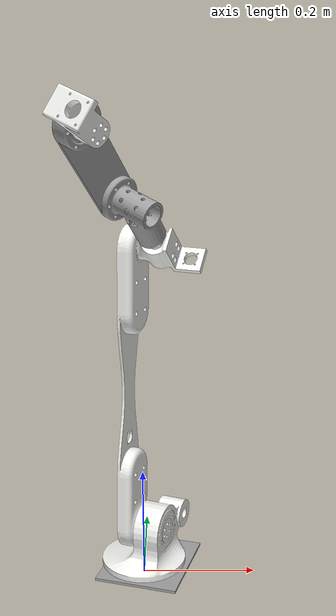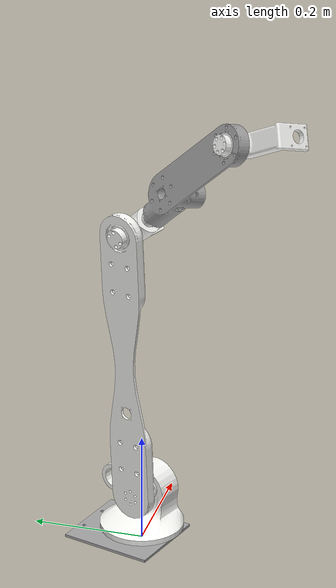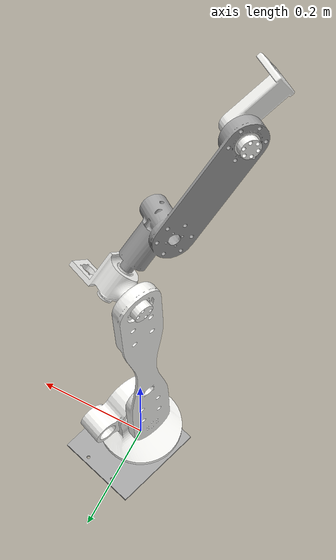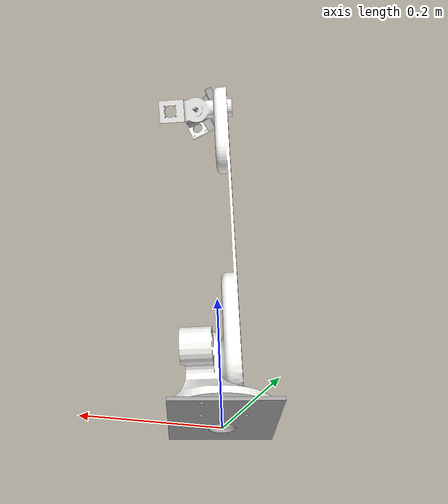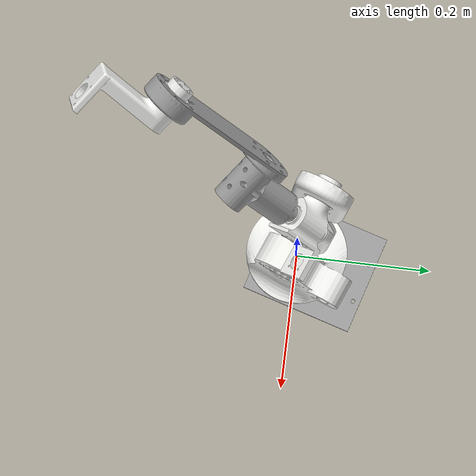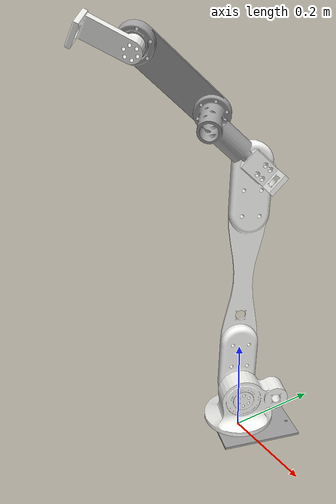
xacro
<?xml version="1.0"?>
<robot xmlns:xacro="http://www.ros.org/wiki/xacro" name="manipulator">
    <xacro:arg name="initial_positions_file" default="initial_positions.yaml" />

    <!-- Import manipulator urdf file -->
    <xacro:include filename="$(find kai)/urdf/manipulator.urdf" />

    <!-- Import control_xacro -->
    <xacro:include filename="manipulator.ros2_control.xacro" />

    <xacro:manipulator_ros2_control name="FakeSystem" initial_positions_file="$(arg initial_positions_file)"/>

</robot>

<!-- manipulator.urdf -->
<robot
  name="manipulator">
  <link
    name="base_link">
    <inertial>
      <origin
        xyz="0.00908164115042133 0.00249999999999991 -0.0305049626836885"
        rpy="0 0 0" />
      <mass
        value="0.11980315324475" />
      <inertia
        ixx="0.000288625897602559"
        ixy="-1.09695631019673E-20"
        ixz="1.5465282435664E-05"
        iyy="0.000529409365034584"
        iyz="-5.8120920424534E-20"
        izz="0.000241282647237211" />
    </inertial>
    <visual>
      <origin
        xyz="0 0 0"
        rpy="0 0 0" />
      <geometry>
        <mesh
          filename="package://kai/meshes/base_link.dae" />
      </geometry>
      <material
        name="">
        <color
          rgba="0.627450980392157 0.627450980392157 0.627450980392157 1" />
      </material>
    </visual>
    <collision>
      <origin
        xyz="0 0 0"
        rpy="0 0 0" />
      <geometry>
        <mesh
          filename="package://kai/meshes/base_link.dae" />
      </geometry>
    </collision>
  </link>
  <link
    name="BaseLink">
    <inertial>
      <origin
        xyz="0.0130098149098752 0.00637352183697149 0.0351023055155284"
        rpy="0 0 0" />
      <mass
        value="0.635450901016514" />
      <inertia
        ixx="0.00146658281605414"
        ixy="-8.00533562972478E-05"
        ixz="-0.000156151329007892"
        iyy="0.00107522273325424"
        iyz="-0.000157052488147922"
        izz="0.00140462825604696" />
    </inertial>
    <visual>
      <origin
        xyz="0 0 0"
        rpy="0 0 0" />
      <geometry>
        <mesh
          filename="package://kai/meshes/BaseLink.STL" />
      </geometry>
      <material
        name="">
        <color
          rgba="0.964705882352941 0.964705882352941 0.952941176470588 1" />
      </material>
    </visual>
    <collision>
      <origin
        xyz="0 0 0"
        rpy="0 0 0" />
      <geometry>
        <mesh
          filename="package://kai/meshes/BaseLink.STL" />
      </geometry>
    </collision>
  </link>
  <joint
    name="Base"
    type="revolute">
    <origin
      xyz="0 0 0.024"
      rpy="0 0 -0.38581" />
    <parent
      link="base_link" />
    <child
      link="BaseLink" />
    <axis
      xyz="0 0 -1" />
    <limit
      lower="-3.14"
      upper="+3.14"
      effort="0"
      velocity="0" />
  </joint>
  <link
    name="Link1">
    <inertial>
      <origin
        xyz="-0.0171899024918185 3.96098050019222E-09 0.211814397998685"
        rpy="0 0 0" />
      <mass
        value="0.75439962581054" />
      <inertia
        ixx="0.00666589929249409"
        ixy="-5.52900390402011E-13"
        ixz="0.000118152905304154"
        iyy="0.00645035702489968"
        iyz="-1.45236654683188E-10"
        izz="0.000447411993441979" />
    </inertial>
    <visual>
      <origin
        xyz="0 0 0"
        rpy="0 0 0" />
      <geometry>
        <mesh
          filename="package://kai/meshes/Link1.STL" />
      </geometry>
      <material
        name="">
        <color
          rgba="0.964705882352941 0.964705882352941 0.952941176470588 1" />
      </material>
    </visual>
    <collision>
      <origin
        xyz="0 0 0"
        rpy="0 0 0" />
      <geometry>
        <mesh
          filename="package://kai/meshes/Link1.STL" />
      </geometry>
    </collision>
  </link>
  <joint
    name="Link_1_joint"
    type="revolute">
    <origin
      xyz="0 0 0.07"
      rpy="-0.049937 0 0" />
    <parent
      link="BaseLink" />
    <child
      link="Link1" />
    <axis
      xyz="-1 0 0" />
    <limit
      lower="-1.65"
      upper="+0.40"
      effort="0"
      velocity="0" />
  </joint>
  <link
    name="LInk2">
    <inertial>
      <origin
        xyz="-1.15541102019279E-07 0.0622210280253098 0.000780641167662521"
        rpy="0 0 0" />
      <mass
        value="0.132683268511766" />
      <inertia
        ixx="0.000149499984756005"
        ixy="9.02670425663714E-10"
        ixz="1.59136095041767E-10"
        iyy="4.34056705353541E-05"
        iyz="1.00196036779716E-05"
        izz="0.000141229747624599" />
    </inertial>
    <visual>
      <origin
        xyz="0 0 0"
        rpy="0 0 0" />
      <geometry>
        <mesh
          filename="package://kai/meshes/LInk2.STL" />
      </geometry>
      <material
        name="">
        <color
          rgba="0.964705882352941 0.964705882352941 0.952941176470588 1" />
      </material>
    </visual>
    <collision>
      <origin
        xyz="0 0 0"
        rpy="0 0 0" />
      <geometry>
        <mesh
          filename="package://kai/meshes/LInk2.STL" />
      </geometry>
    </collision>
  </link>
  <joint
    name="Link_2_joint"
    type="revolute">
    <origin
      xyz="-0.041876 0 0.5"
      rpy="0 0.86992 -1.5708" />
    <parent
      link="Link1" />
    <child
      link="LInk2" />
    <axis
      xyz="0 -1 0" />
      <!-- changes in x -->
    <limit
      lower="-2.00"
      upper="+3.78"
      effort="0"
      velocity="0" />
  </joint>
  <link
    name="LInk2_roll">
    <inertial>
      <origin
        xyz="0.160931421999159 0.00967850395069597 0.0167637528504534"
        rpy="0 0 0" />
      <mass
        value="0.265567495853836" />
      <inertia
        ixx="0.000132124255543682"
        ixy="-1.09508918218255E-05"
        ixz="-1.89684816624954E-05"
        iyy="0.000471604742846838"
        iyz="1.03577523752584E-05"
        izz="0.000483564319253852" />
    </inertial>
    <visual>
      <origin
        xyz="0 0 0"
        rpy="0 0 0" />
      <geometry>
        <mesh
          filename="package://kai/meshes/LInk2_roll.STL" />
      </geometry>
      <material
        name="">
        <color
          rgba="0.627450980392157 0.627450980392157 0.627450980392157 1" />
      </material>
    </visual>
    <collision>
      <origin
        xyz="0 0 0"
        rpy="0 0 0" />
      <geometry>
        <mesh
          filename="package://kai/meshes/LInk2_roll.STL" />
      </geometry>
    </collision>
  </link>
  <joint
    name="Link_2_roll_joint"
    type="revolute">
    <origin
      xyz="0 0.068 0"
      rpy="1.6895 -1.5708 0" />
    <parent
      link="LInk2" />
    <child
      link="LInk2_roll" />
    <axis
      xyz="-1 0 0" />
    <limit
      lower="-3.14"
      upper="+3.14"
      effort="0"
      velocity="0" />
  </joint>
  <link
    name="Link3">
    <inertial>
      <origin
        xyz="-1.11690691251276E-07 -0.00647763349746033 0.0333206221271415"
        rpy="0 0 0" />
      <mass
        value="0.144270851305288" />
      <inertia
        ixx="0.000257274308797651"
        ixy="-2.80207124118818E-11"
        ixz="-1.21019066563576E-10"
        iyy="0.00020954236699102"
        iyz="-7.32674962057258E-05"
        izz="8.42184579446783E-05" />
    </inertial>
    <visual>
      <origin
        xyz="0 0 0"
        rpy="0 0 0" />
      <geometry>
        <mesh
          filename="package://kai/meshes/Link3.STL" />
      </geometry>
      <material
        name="">
        <color
          rgba="0.964705882352941 0.964705882352941 0.952941176470588 1" />
      </material>
    </visual>
    <collision>
      <origin
        xyz="0 0 0"
        rpy="0 0 0" />
      <geometry>
        <mesh
          filename="package://kai/meshes/Link3.STL" />
      </geometry>
    </collision>
  </link>
  <joint
    name="Link_3_joint"
    type="revolute">
    <origin
      xyz="0.30505 0 0"
      rpy="-1.4084 -0.50003 -1.9" />
    <parent
      link="LInk2_roll" />
    <child
      link="Link3" />
    <axis
      xyz="0 -1 0" />
    <limit
      lower="-3.14"
      upper="+3.14"
      effort="0"
      velocity="0" />
  </joint>
</robot>
